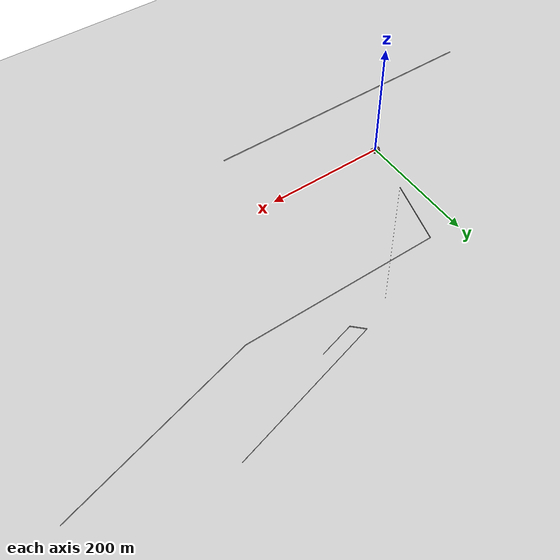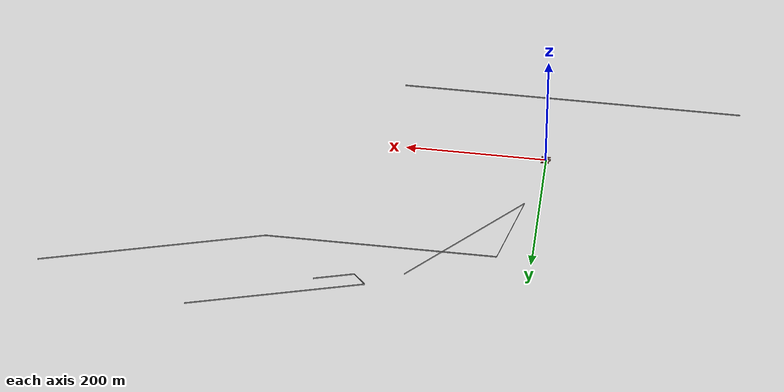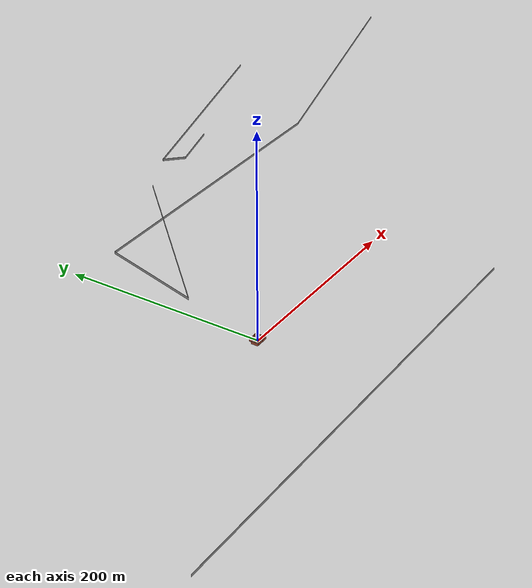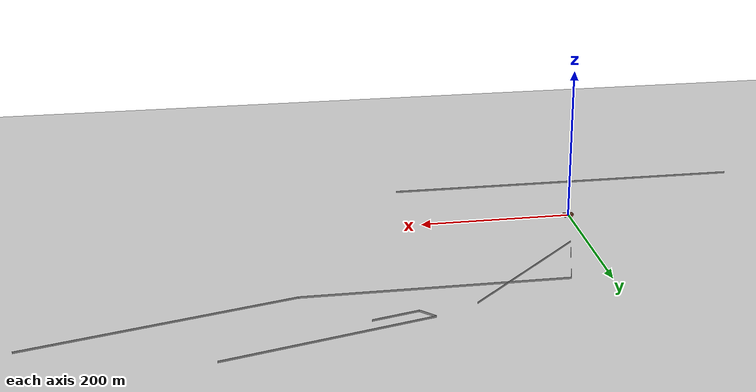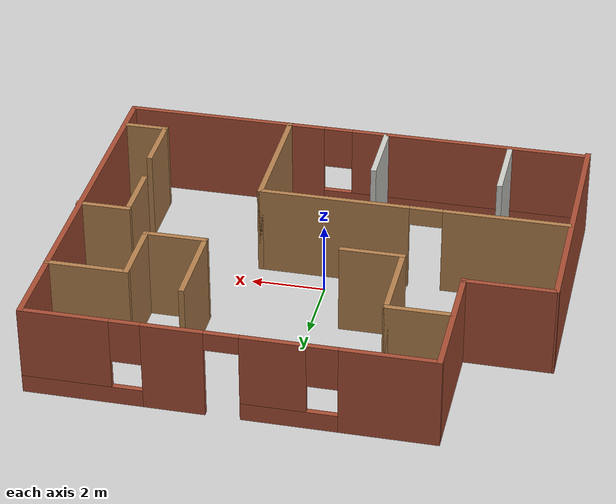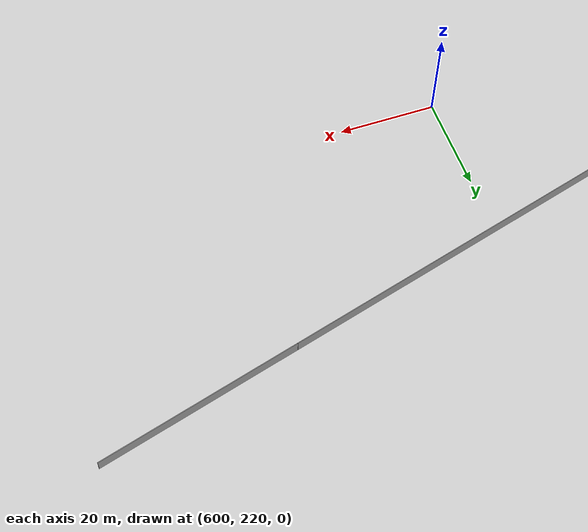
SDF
<sdf version="1.7">
 <world name="default">
  <light name="sun" type="directional">
   <pose>0 0 10 0 -0 0</pose>
   <diffuse>0.8 0.8 0.8 1</diffuse>
   <specular>0.2 0.2 0.2 1</specular>
   <attenuation>
    <range>1000</range>
    <constant>0.9</constant>
    <linear>0.01</linear>
    <quadratic>0.001</quadratic>
   </attenuation>
   <direction>-0.5 0.1 -0.9</direction>
   <spot><inner_angle>0</inner_angle><outer_angle>0</outer_angle><falloff>0</falloff></spot>
  </light>
  <model name="ground_plane">
   <static>1</static>
   <link name="link">
    <collision name="collision">
     <geometry><plane><normal>0 0 1</normal><size>100 100</size></plane></geometry>
     <surface>
      <contact><collide_bitmask>65535</collide_bitmask></contact>
      <friction><ode><mu>100</mu><mu2>50</mu2></ode></friction>
     </surface>
    </collision>
    <visual name="visual">
     <cast_shadows>0</cast_shadows>
     <geometry><plane><normal>0 0 1</normal><size>100 100</size></plane></geometry>
     <material>
      <script><uri>file://media/materials/scripts/gazebo.material</uri><name>Gazebo/Grey</name></script>
     </material>
    </visual>
   </link>
  </model>
  <gravity>0 0 -9.8</gravity>
  <magnetic_field>6e-06 2.3e-05 -4.2e-05</magnetic_field>
  <atmosphere type="adiabatic"/>
  <physics type="ode">
   <max_step_size>0.001</max_step_size>
   <real_time_factor>1</real_time_factor>
   <real_time_update_rate>1000</real_time_update_rate>
  </physics>
  <scene><ambient>0.4 0.4 0.4 1</ambient><background>0.7 0.7 0.7 1</background><shadows>1</shadows></scene>
  <spherical_coordinates>
   <surface_model>EARTH_WGS84</surface_model>
   <latitude_deg>0</latitude_deg>
   <longitude_deg>0</longitude_deg>
   <elevation>0</elevation>
   <heading_deg>0</heading_deg>
  </spherical_coordinates>
  <model name="diplom_world">
   <pose>208.767 105.628 0 0 -0 0</pose>
   <link name="Wall_10">
    <collision name="Wall_10_Collision">
     <geometry><box><size>0.16 0.15 2.5</size></box></geometry>
     <pose>0 0 1.25 0 -0 0</pose>
    </collision>
    <visual name="Wall_10_Visual">
     <pose>0 0 1.25 0 -0 0</pose>
     <geometry><box><size>0.16 0.15 2.5</size></box></geometry>
     <material>
      <script><uri>file://media/materials/scripts/gazebo.material</uri><name>Gazebo/Grey</name></script>
      <ambient>1 1 1 1</ambient>
     </material>
     <meta><layer>0</layer></meta>
    </visual>
    <pose>436.31 158.798 0 0 -0 0</pose>
   </link>
   <link name="Wall_11">
    <collision name="Wall_11_Collision">
     <geometry><box><size>279.25 0.15 2.5</size></box></geometry>
     <pose>0 0 1.25 0 -0 0</pose>
    </collision>
    <visual name="Wall_11_Visual">
     <pose>0 0 1.25 0 -0 0</pose>
     <geometry><box><size>279.25 0.15 2.5</size></box></geometry>
     <material>
      <script><uri>file://media/materials/scripts/gazebo.material</uri><name>Gazebo/Grey</name></script>
      <ambient>1 1 1 1</ambient>
     </material>
     <meta><layer>0</layer></meta>
    </visual>
    <pose>301.52 122.679 0 0 -0 -2.87979</pose>
   </link>
   <link name="Wall_12">
    <collision name="Wall_12_Collision">
     <geometry><box><size>326.5 0.15 2.5</size></box></geometry>
     <pose>0 0 1.25 0 -0 0</pose>
    </collision>
    <visual name="Wall_12_Visual">
     <pose>0 0 1.25 0 -0 0</pose>
     <geometry><box><size>326.5 0.15 2.5</size></box></geometry>
     <material>
      <script><uri>file://media/materials/scripts/gazebo.material</uri><name>Gazebo/Grey</name></script>
      <ambient>1 1 1 1</ambient>
     </material>
     <meta><layer>0</layer></meta>
    </visual>
    <pose>3.55029 86.5612 0 0 -0 3.14159</pose>
   </link>
   <link name="Wall_13">
    <collision name="Wall_13_Collision">
     <geometry><box><size>108.75 0.15 2.5</size></box></geometry>
     <pose>0 0 1.25 0 -0 0</pose>
    </collision>
    <visual name="Wall_13_Visual">
     <pose>0 0 1.25 0 -0 0</pose>
     <geometry><box><size>108.75 0.15 2.5</size></box></geometry>
     <material>
      <script><uri>file://media/materials/scripts/gazebo.material</uri><name>Gazebo/Grey</name></script>
      <ambient>1 1 1 1</ambient>
     </material>
     <meta><layer>0</layer></meta>
    </visual>
    <pose>-173.679 34.1115 0 0 -0 -1.8326</pose>
   </link>
   <link name="Wall_14">
    <collision name="Wall_14_Collision">
     <geometry><box><size>216.25 0.15 2.5</size></box></geometry>
     <pose>0 0 1.25 0 -0 0</pose>
    </collision>
    <visual name="Wall_14_Visual">
     <pose>0 0 1.25 0 -0 0</pose>
     <geometry><box><size>216.25 0.15 2.5</size></box></geometry>
     <material>
      <script><uri>file://media/materials/scripts/gazebo.material</uri><name>Gazebo/Grey</name></script>
      <ambient>1 1 1 1</ambient>
     </material>
     <meta><layer>0</layer></meta>
    </visual>
    <pose>-111.33 58.0646 0 0 -0 0.785398</pose>
   </link>
   <link name="Wall_16">
    <collision name="Wall_16_Collision">
     <geometry><box><size>483.75 0.15 2.5</size></box></geometry>
     <pose>0 0 1.25 0 -0 0</pose>
    </collision>
    <visual name="Wall_16_Visual">
     <pose>0 0 1.25 0 -0 0</pose>
     <geometry><box><size>483.75 0.15 2.5</size></box></geometry>
     <material>
      <script><uri>file://media/materials/scripts/gazebo.material</uri><name>Gazebo/Grey</name></script>
      <ambient>1 1 1 1</ambient>
     </material>
     <meta><layer>0</layer></meta>
    </visual>
    <pose>-234.705 -225.196 0 0 -0 3.14159</pose>
   </link>
   <link name="Wall_34">
    <pose>-207.597 -99.6107 0 0 -0 0</pose>
    <visual name="Wall_34_Visual_0">
     <pose>-4.08972 0 1.25 0 -0 0</pose>
     <geometry><box><size>2.57056 0.15 2.5</size></box></geometry>
     <material>
      <script><uri>file://media/materials/scripts/gazebo.material</uri><name>Gazebo/Bricks</name></script>
      <ambient>1 1 1 1</ambient>
     </material>
     <meta><layer>0</layer></meta>
    </visual>
    <collision name="Wall_34_Collision_0">
     <geometry><box><size>2.57056 0.15 2.5</size></box></geometry>
     <pose>-4.08972 0 1.25 0 -0 0</pose>
    </collision>
    <visual name="Wall_34_Visual_1">
     <pose>1.39519 0 1.25 0 -0 0</pose>
     <geometry><box><size>1.6085 0.15 2.5</size></box></geometry>
     <material>
      <script><uri>file://media/materials/scripts/gazebo.material</uri><name>Gazebo/Bricks</name></script>
      <ambient>1 1 1 1</ambient>
     </material>
     <meta><layer>0</layer></meta>
    </visual>
    <collision name="Wall_34_Collision_1">
     <geometry><box><size>1.6085 0.15 2.5</size></box></geometry>
     <pose>1.39519 0 1.25 0 -0 0</pose>
    </collision>
    <visual name="Wall_34_Visual_2">
     <pose>-1.55675 0 0.25 0 -0 0</pose>
     <geometry><box><size>2.49538 0.15 0.5</size></box></geometry>
     <material>
      <script><uri>file://media/materials/scripts/gazebo.material</uri><name>Gazebo/Bricks</name></script>
      <ambient>1 1 1 1</ambient>
     </material>
     <meta><layer>0</layer></meta>
    </visual>
    <collision name="Wall_34_Collision_2">
     <geometry><box><size>2.49538 0.15 0.5</size></box></geometry>
     <pose>-1.55675 0 0.25 0 -0 0</pose>
    </collision>
    <visual name="Wall_34_Visual_3">
     <pose>3.78722 0 0.25 0 -0 0</pose>
     <geometry><box><size>3.17556 0.15 0.5</size></box></geometry>
     <material>
      <script><uri>file://media/materials/scripts/gazebo.material</uri><name>Gazebo/Bricks</name></script>
      <ambient>1 1 1 1</ambient>
     </material>
     <meta><layer>0</layer></meta>
    </visual>
    <collision name="Wall_34_Collision_3">
     <geometry><box><size>3.17556 0.15 0.5</size></box></geometry>
     <pose>3.78722 0 0.25 0 -0 0</pose>
    </collision>
    <visual name="Wall_34_Visual_4">
     <pose>-1.15675 0 1.5 0 -0 0</pose>
     <geometry><box><size>1.69538 0.15 2</size></box></geometry>
     <material>
      <script><uri>file://media/materials/scripts/gazebo.material</uri><name>Gazebo/Bricks</name></script>
      <ambient>1 1 1 1</ambient>
     </material>
     <meta><layer>0</layer></meta>
    </visual>
    <collision name="Wall_34_Collision_4">
     <geometry><box><size>1.69538 0.15 2</size></box></geometry>
     <pose>-1.15675 0 1.5 0 -0 0</pose>
    </collision>
    <visual name="Wall_34_Visual_5">
     <pose>-1.15675 0 1.5 0 -0 0</pose>
     <geometry><box><size>1.69538 0.15 2</size></box></geometry>
     <material>
      <script><uri>file://media/materials/scripts/gazebo.material</uri><name>Gazebo/Bricks</name></script>
      <ambient>1 1 1 1</ambient>
     </material>
     <meta><layer>0</layer></meta>
    </visual>
    <collision name="Wall_34_Collision_5">
     <geometry><box><size>1.69538 0.15 2</size></box></geometry>
     <pose>-1.15675 0 1.5 0 -0 0</pose>
    </collision>
    <visual name="Wall_34_Visual_6">
     <pose>4.18722 0 1.5 0 -0 0</pose>
     <geometry><box><size>2.37556 0.15 2</size></box></geometry>
     <material>
      <script><uri>file://media/materials/scripts/gazebo.material</uri><name>Gazebo/Bricks</name></script>
      <ambient>1 1 1 1</ambient>
     </material>
     <meta><layer>0</layer></meta>
    </visual>
    <collision name="Wall_34_Collision_6">
     <geometry><box><size>2.37556 0.15 2</size></box></geometry>
     <pose>4.18722 0 1.5 0 -0 0</pose>
    </collision>
    <visual name="Wall_34_Visual_7">
     <pose>-2.40444 0 1.9 0 -0 0</pose>
     <geometry><box><size>0.8 0.15 1.2</size></box></geometry>
     <material>
      <script><uri>file://media/materials/scripts/gazebo.material</uri><name>Gazebo/Bricks</name></script>
      <ambient>1 1 1 1</ambient>
     </material>
     <meta><layer>0</layer></meta>
    </visual>
    <collision name="Wall_34_Collision_7">
     <geometry><box><size>0.8 0.15 1.2</size></box></geometry>
     <pose>-2.40444 0 1.9 0 -0 0</pose>
    </collision>
    <visual name="Wall_34_Visual_8">
     <pose>2.59944 0 1.9 0 -0 0</pose>
     <geometry><box><size>0.8 0.15 1.2</size></box></geometry>
     <material>
      <script><uri>file://media/materials/scripts/gazebo.material</uri><name>Gazebo/Bricks</name></script>
      <ambient>1 1 1 1</ambient>
     </material>
     <meta><layer>0</layer></meta>
    </visual>
    <collision name="Wall_34_Collision_8">
     <geometry><box><size>0.8 0.15 1.2</size></box></geometry>
     <pose>2.59944 0 1.9 0 -0 0</pose>
    </collision>
    <visual name="Wall_34_Visual_9">
     <pose>0.140937 0 2.25 0 -0 0</pose>
     <geometry><box><size>0.9 0.15 0.5</size></box></geometry>
     <material>
      <script><uri>file://media/materials/scripts/gazebo.material</uri><name>Gazebo/Bricks</name></script>
      <ambient>1 1 1 1</ambient>
     </material>
     <meta><layer>0</layer></meta>
    </visual>
    <collision name="Wall_34_Collision_9">
     <geometry><box><size>0.9 0.15 0.5</size></box></geometry>
     <pose>0.140937 0 2.25 0 -0 0</pose>
    </collision>
    <visual name="Wall_34_Visual_10">
     <pose>0.140937 0 2.25 0 -0 0</pose>
     <geometry><box><size>0.9 0.15 0.5</size></box></geometry>
     <material>
      <script><uri>file://media/materials/scripts/gazebo.material</uri><name>Gazebo/Bricks</name></script>
      <ambient>1 1 1 1</ambient>
     </material>
     <meta><layer>0</layer></meta>
    </visual>
    <collision name="Wall_34_Collision_10">
     <geometry><box><size>0.9 0.15 0.5</size></box></geometry>
     <pose>0.140937 0 2.25 0 -0 0</pose>
    </collision>
   </link>
   <link name="Wall_35">
    <collision name="Wall_35_Collision">
     <geometry><box><size>10.5 0.15 2.5</size></box></geometry>
     <pose>0 0 1.25 0 -0 0</pose>
    </collision>
    <visual name="Wall_35_Visual">
     <pose>0 0 1.25 0 -0 0</pose>
     <geometry><box><size>10.5 0.15 2.5</size></box></geometry>
     <material>
      <script><uri>file://media/materials/scripts/gazebo.material</uri><name>Gazebo/Bricks</name></script>
      <ambient>1 1 1 1</ambient>
     </material>
     <meta><layer>0</layer></meta>
    </visual>
    <pose>-202.297 -104.786 0 0 -0 -1.5708</pose>
   </link>
   <link name="Wall_38">
    <pose>-208.722 -109.961 0 0 -0 3.14159</pose>
    <visual name="Wall_38_Visual_0">
     <pose>-3.68025 0 1.25 0 -0 0</pose>
     <geometry><box><size>5.63949 0.15 2.5</size></box></geometry>
     <material>
      <script><uri>file://media/materials/scripts/gazebo.material</uri><name>Gazebo/Bricks</name></script>
      <ambient>1 1 1 1</ambient>
     </material>
     <meta><layer>0</layer></meta>
    </visual>
    <collision name="Wall_38_Collision_0">
     <geometry><box><size>5.63949 0.15 2.5</size></box></geometry>
     <pose>-3.68025 0 1.25 0 -0 0</pose>
    </collision>
    <visual name="Wall_38_Visual_1">
     <pose>2.81975 0 0.25 0 -0 0</pose>
     <geometry><box><size>7.36051 0.15 0.5</size></box></geometry>
     <material>
      <script><uri>file://media/materials/scripts/gazebo.material</uri><name>Gazebo/Bricks</name></script>
      <ambient>1 1 1 1</ambient>
     </material>
     <meta><layer>0</layer></meta>
    </visual>
    <collision name="Wall_38_Collision_1">
     <geometry><box><size>7.36051 0.15 0.5</size></box></geometry>
     <pose>2.81975 0 0.25 0 -0 0</pose>
    </collision>
    <visual name="Wall_38_Visual_2">
     <pose>3.21975 0 1.5 0 -0 0</pose>
     <geometry><box><size>6.56051 0.15 2</size></box></geometry>
     <material>
      <script><uri>file://media/materials/scripts/gazebo.material</uri><name>Gazebo/Bricks</name></script>
      <ambient>1 1 1 1</ambient>
     </material>
     <meta><layer>0</layer></meta>
    </visual>
    <collision name="Wall_38_Collision_2">
     <geometry><box><size>6.56051 0.15 2</size></box></geometry>
     <pose>3.21975 0 1.5 0 -0 0</pose>
    </collision>
    <visual name="Wall_38_Visual_3">
     <pose>-0.460511 0 1.9 0 -0 0</pose>
     <geometry><box><size>0.8 0.15 1.2</size></box></geometry>
     <material>
      <script><uri>file://media/materials/scripts/gazebo.material</uri><name>Gazebo/Bricks</name></script>
      <ambient>1 1 1 1</ambient>
     </material>
     <meta><layer>0</layer></meta>
    </visual>
    <collision name="Wall_38_Collision_3">
     <geometry><box><size>0.8 0.15 1.2</size></box></geometry>
     <pose>-0.460511 0 1.9 0 -0 0</pose>
    </collision>
   </link>
   <link name="Wall_40">
    <collision name="Wall_40_Collision">
     <geometry><box><size>2.5 0.15 2.5</size></box></geometry>
     <pose>0 0 1.25 0 -0 0</pose>
    </collision>
    <visual name="Wall_40_Visual">
     <pose>0 0 1.25 0 -0 0</pose>
     <geometry><box><size>2.5 0.15 2.5</size></box></geometry>
     <material>
      <script><uri>file://media/materials/scripts/gazebo.material</uri><name>Gazebo/Bricks</name></script>
      <ambient>1 1 1 1</ambient>
     </material>
     <meta><layer>0</layer></meta>
    </visual>
    <pose>-214.095 -103.196 0 0 -0 0</pose>
   </link>
   <link name="Wall_42">
    <collision name="Wall_42_Collision">
     <geometry><box><size>3.75 0.15 2.5</size></box></geometry>
     <pose>0 0 1.25 0 -0 0</pose>
    </collision>
    <visual name="Wall_42_Visual">
     <pose>0 0 1.25 0 -0 0</pose>
     <geometry><box><size>3.75 0.15 2.5</size></box></geometry>
     <material>
      <script><uri>file://media/materials/scripts/gazebo.material</uri><name>Gazebo/Bricks</name></script>
      <ambient>1 1 1 1</ambient>
     </material>
     <meta><layer>0</layer></meta>
    </visual>
    <pose>-212.897 -101.411 0 0 -0 -1.5708</pose>
   </link>
   <link name="Wall_44">
    <collision name="Wall_44_Collision">
     <geometry><box><size>7 0.15 2.5</size></box></geometry>
     <pose>0 0 1.25 0 -0 0</pose>
    </collision>
    <visual name="Wall_44_Visual">
     <pose>0 0 1.25 0 -0 0</pose>
     <geometry><box><size>7 0.15 2.5</size></box></geometry>
     <material>
      <script><uri>file://media/materials/scripts/gazebo.material</uri><name>Gazebo/Bricks</name></script>
      <ambient>1 1 1 1</ambient>
     </material>
     <meta><layer>0</layer></meta>
    </visual>
    <pose>-215.27 -106.621 0 0 -0 -1.5708</pose>
   </link>
   <link name="Wall_47">
    <collision name="Wall_47_Collision">
     <geometry><box><size>2.25 0.15 2.5</size></box></geometry>
     <pose>0 0 1.25 0 -0 0</pose>
    </collision>
    <visual name="Wall_47_Visual">
     <pose>0 0 1.25 0 -0 0</pose>
     <geometry><box><size>2.25 0.15 2.5</size></box></geometry>
     <material>
      <script><uri>file://media/materials/scripts/gazebo.material</uri><name>Gazebo/Wood</name></script>
      <ambient>1 1 1 1</ambient>
     </material>
     <meta><layer>0</layer></meta>
    </visual>
    <pose>-203.358 -101.808 0 0 -0 3.14159</pose>
   </link>
   <link name="Wall_48">
    <collision name="Wall_48_Collision">
     <geometry><box><size>2 0.15 2.5</size></box></geometry>
     <pose>0 0 1.25 0 -0 0</pose>
    </collision>
    <visual name="Wall_48_Visual">
     <pose>0 0 1.25 0 -0 0</pose>
     <geometry><box><size>2 0.15 2.5</size></box></geometry>
     <material>
      <script><uri>file://media/materials/scripts/gazebo.material</uri><name>Gazebo/Wood</name></script>
      <ambient>1 1 1 1</ambient>
     </material>
     <meta><layer>0</layer></meta>
    </visual>
    <pose>-204.408 -102.733 0 0 -0 -1.5708</pose>
   </link>
   <link name="Wall_49">
    <collision name="Wall_49_Collision">
     <geometry><box><size>1.75 0.15 2.5</size></box></geometry>
     <pose>0 0 1.25 0 -0 0</pose>
    </collision>
    <visual name="Wall_49_Visual">
     <pose>0 0 1.25 0 -0 0</pose>
     <geometry><box><size>1.75 0.15 2.5</size></box></geometry>
     <material>
      <script><uri>file://media/materials/scripts/gazebo.material</uri><name>Gazebo/Wood</name></script>
      <ambient>1 1 1 1</ambient>
     </material>
     <meta><layer>0</layer></meta>
    </visual>
    <pose>-205.208 -103.658 0 0 -0 3.14159</pose>
   </link>
   <link name="Wall_5">
    <collision name="Wall_5_Collision">
     <geometry><box><size>57.75 0.15 2.5</size></box></geometry>
     <pose>0 0 1.25 0 -0 0</pose>
    </collision>
    <visual name="Wall_5_Visual">
     <pose>0 0 1.25 0 -0 0</pose>
     <geometry><box><size>57.75 0.15 2.5</size></box></geometry>
     <material>
      <script><uri>file://media/materials/scripts/gazebo.material</uri><name>Gazebo/Grey</name></script>
      <ambient>1 1 1 1</ambient>
     </material>
     <meta><layer>0</layer></meta>
    </visual>
    <pose>61.7641 150.327 0 0 -0 -2.87979</pose>
   </link>
   <link name="Wall_50">
    <collision name="Wall_50_Collision">
     <geometry><box><size>2.5 0.15 2.5</size></box></geometry>
     <pose>0 0 1.25 0 -0 0</pose>
    </collision>
    <visual name="Wall_50_Visual">
     <pose>0 0 1.25 0 -0 0</pose>
     <geometry><box><size>2.5 0.15 2.5</size></box></geometry>
     <material>
      <script><uri>file://media/materials/scripts/gazebo.material</uri><name>Gazebo/Wood</name></script>
      <ambient>1 1 1 1</ambient>
     </material>
     <meta><layer>0</layer></meta>
    </visual>
    <pose>-206.008 -102.483 0 0 -0 1.5708</pose>
   </link>
   <link name="Wall_52">
    <collision name="Wall_52_Collision">
     <geometry><box><size>1.5 0.15 2.5</size></box></geometry>
     <pose>0 0 1.25 0 -0 0</pose>
    </collision>
    <visual name="Wall_52_Visual">
     <pose>0 0 1.25 0 -0 0</pose>
     <geometry><box><size>1.5 0.15 2.5</size></box></geometry>
     <material>
      <script><uri>file://media/materials/scripts/gazebo.material</uri><name>Gazebo/Wood</name></script>
      <ambient>1 1 1 1</ambient>
     </material>
     <meta><layer>0</layer></meta>
    </visual>
    <pose>-202.938 -104.718 0 0 -0 3.14159</pose>
   </link>
   <link name="Wall_53">
    <collision name="Wall_53_Collision">
     <geometry><box><size>1.75 0.15 2.5</size></box></geometry>
     <pose>0 0 1.25 0 -0 0</pose>
    </collision>
    <visual name="Wall_53_Visual">
     <pose>0 0 1.25 0 -0 0</pose>
     <geometry><box><size>1.75 0.15 2.5</size></box></geometry>
     <material>
      <script><uri>file://media/materials/scripts/gazebo.material</uri><name>Gazebo/Wood</name></script>
      <ambient>1 1 1 1</ambient>
     </material>
     <meta><layer>0</layer></meta>
    </visual>
    <pose>-203.613 -105.518 0 0 -0 -1.5708</pose>
   </link>
   <link name="Wall_59">
    <collision name="Wall_59_Collision">
     <geometry><box><size>1.25 0.15 2.5</size></box></geometry>
     <pose>0 0 1.25 0 -0 0</pose>
    </collision>
    <visual name="Wall_59_Visual">
     <pose>0 0 1.25 0 -0 0</pose>
     <geometry><box><size>1.25 0.15 2.5</size></box></geometry>
     <material>
      <script><uri>file://media/materials/scripts/gazebo.material</uri><name>Gazebo/Wood</name></script>
      <ambient>1 1 1 1</ambient>
     </material>
     <meta><layer>0</layer></meta>
    </visual>
    <pose>-202.926 -109.003 0 0 -0 3.14159</pose>
   </link>
   <link name="Wall_6">
    <collision name="Wall_6_Collision">
     <geometry><box><size>24 0.15 2.5</size></box></geometry>
     <pose>0 0 1.25 0 -0 0</pose>
    </collision>
    <visual name="Wall_6_Visual">
     <pose>0 0 1.25 0 -0 0</pose>
     <geometry><box><size>24 0.15 2.5</size></box></geometry>
     <material>
      <script><uri>file://media/materials/scripts/gazebo.material</uri><name>Gazebo/Grey</name></script>
      <ambient>1 1 1 1</ambient>
     </material>
     <meta><layer>0</layer></meta>
    </visual>
    <pose>25.5132 151.305 0 0 -0 2.35619</pose>
   </link>
   <link name="Wall_60">
    <collision name="Wall_60_Collision">
     <geometry><box><size>1.75 0.15 2.5</size></box></geometry>
     <pose>0 0 1.25 0 -0 0</pose>
    </collision>
    <visual name="Wall_60_Visual">
     <pose>0 0 1.25 0 -0 0</pose>
     <geometry><box><size>1.75 0.15 2.5</size></box></geometry>
     <material>
      <script><uri>file://media/materials/scripts/gazebo.material</uri><name>Gazebo/Wood</name></script>
      <ambient>1 1 1 1</ambient>
     </material>
     <meta><layer>0</layer></meta>
    </visual>
    <pose>-203.476 -108.203 0 0 -0 1.5708</pose>
   </link>
   <link name="Wall_65">
    <pose>-211.035 -106.342 0 0 -0 0</pose>
    <visual name="Wall_65_Visual_0">
     <pose>-2.52594 0 1.25 0 -0 0</pose>
     <geometry><box><size>3.44811 0.15 2.5</size></box></geometry>
     <material>
      <script><uri>file://media/materials/scripts/gazebo.material</uri><name>Gazebo/Wood</name></script>
      <ambient>1 1 1 1</ambient>
     </material>
     <meta><layer>0</layer></meta>
    </visual>
    <collision name="Wall_65_Collision_0">
     <geometry><box><size>3.44811 0.15 2.5</size></box></geometry>
     <pose>-2.52594 0 1.25 0 -0 0</pose>
    </collision>
    <visual name="Wall_65_Visual_1">
     <pose>2.17406 0 1.25 0 -0 0</pose>
     <geometry><box><size>4.15189 0.15 2.5</size></box></geometry>
     <material>
      <script><uri>file://media/materials/scripts/gazebo.material</uri><name>Gazebo/Wood</name></script>
      <ambient>1 1 1 1</ambient>
     </material>
     <meta><layer>0</layer></meta>
    </visual>
    <collision name="Wall_65_Collision_1">
     <geometry><box><size>4.15189 0.15 2.5</size></box></geometry>
     <pose>2.17406 0 1.25 0 -0 0</pose>
    </collision>
    <visual name="Wall_65_Visual_2">
     <pose>-0.351889 0 2.25 0 -0 0</pose>
     <geometry><box><size>0.9 0.15 0.5</size></box></geometry>
     <material>
      <script><uri>file://media/materials/scripts/gazebo.material</uri><name>Gazebo/Wood</name></script>
      <ambient>1 1 1 1</ambient>
     </material>
     <meta><layer>0</layer></meta>
    </visual>
    <collision name="Wall_65_Collision_2">
     <geometry><box><size>0.9 0.15 0.5</size></box></geometry>
     <pose>-0.351889 0 2.25 0 -0 0</pose>
    </collision>
   </link>
   <link name="Wall_68">
    <collision name="Wall_68_Collision">
     <geometry><box><size>3.75 0.15 2.5</size></box></geometry>
     <pose>0 0 1.25 0 -0 0</pose>
    </collision>
    <visual name="Wall_68_Visual">
     <pose>0 0 1.25 0 -0 0</pose>
     <geometry><box><size>3.75 0.15 2.5</size></box></geometry>
     <material>
      <script><uri>file://media/materials/scripts/gazebo.material</uri><name>Gazebo/Wood</name></script>
      <ambient>1 1 1 1</ambient>
     </material>
     <meta><layer>0</layer></meta>
    </visual>
    <pose>-206.86 -108.142 0 0 -0 -1.5708</pose>
   </link>
   <link name="Wall_7">
    <collision name="Wall_7_Collision">
     <geometry><box><size>253 0.15 2.5</size></box></geometry>
     <pose>0 0 1.25 0 -0 0</pose>
    </collision>
    <visual name="Wall_7_Visual">
     <pose>0 0 1.25 0 -0 0</pose>
     <geometry><box><size>253 0.15 2.5</size></box></geometry>
     <material>
      <script><uri>file://media/materials/scripts/gazebo.material</uri><name>Gazebo/Grey</name></script>
      <ambient>1 1 1 1</ambient>
     </material>
     <meta><layer>0</layer></meta>
    </visual>
    <pose>139.198 192.458 0 0 -0 0.261799</pose>
   </link>
   <link name="Wall_71">
    <collision name="Wall_71_Collision">
     <geometry><box><size>2 0.15 2.5</size></box></geometry>
     <pose>0 0 1.25 0 -0 0</pose>
    </collision>
    <visual name="Wall_71_Visual">
     <pose>0 0 1.25 0 -0 0</pose>
     <geometry><box><size>2 0.15 2.5</size></box></geometry>
     <material>
      <script><uri>file://media/materials/scripts/gazebo.material</uri><name>Gazebo/CeilingTiled</name></script>
      <ambient>1 1 1 1</ambient>
     </material>
     <meta><layer>0</layer></meta>
    </visual>
    <pose>-213.122 -108.897 0 0 -0 1.5708</pose>
   </link>
   <link name="Wall_73">
    <collision name="Wall_73_Collision">
     <geometry><box><size>2 0.15 2.5</size></box></geometry>
     <pose>0 0 1.25 0 -0 0</pose>
    </collision>
    <visual name="Wall_73_Visual">
     <pose>0 0 1.25 0 -0 0</pose>
     <geometry><box><size>2 0.15 2.5</size></box></geometry>
     <material>
      <script><uri>file://media/materials/scripts/gazebo.material</uri><name>Gazebo/CeilingTiled</name></script>
      <ambient>1 1 1 1</ambient>
     </material>
     <meta><layer>0</layer></meta>
    </visual>
    <pose>-209.637 -108.972 0 0 -0 1.5708</pose>
   </link>
   <link name="Wall_78">
    <collision name="Wall_78_Collision">
     <geometry><box><size>1.75 0.15 2.5</size></box></geometry>
     <pose>0 0 1.25 0 -0 0</pose>
    </collision>
    <visual name="Wall_78_Visual">
     <pose>0 0 1.25 0 -0 0</pose>
     <geometry><box><size>1.75 0.15 2.5</size></box></geometry>
     <material>
      <script><uri>file://media/materials/scripts/gazebo.material</uri><name>Gazebo/Wood</name></script>
      <ambient>1 1 1 1</ambient>
     </material>
     <meta><layer>0</layer></meta>
    </visual>
    <pose>-211.986 -101.642 0 0 -0 0</pose>
   </link>
   <link name="Wall_79">
    <collision name="Wall_79_Collision">
     <geometry><box><size>2.5 0.15 2.5</size></box></geometry>
     <pose>0 0 1.25 0 -0 0</pose>
    </collision>
    <visual name="Wall_79_Visual">
     <pose>0 0 1.25 0 -0 0</pose>
     <geometry><box><size>2.5 0.15 2.5</size></box></geometry>
     <material>
      <script><uri>file://media/materials/scripts/gazebo.material</uri><name>Gazebo/Wood</name></script>
      <ambient>1 1 1 1</ambient>
     </material>
     <meta><layer>0</layer></meta>
    </visual>
    <pose>-211.186 -102.817 0 0 -0 -1.5708</pose>
   </link>
   <link name="Wall_80">
    <collision name="Wall_80_Collision">
     <geometry><box><size>1.75 0.15 2.5</size></box></geometry>
     <pose>0 0 1.25 0 -0 0</pose>
    </collision>
    <visual name="Wall_80_Visual">
     <pose>0 0 1.25 0 -0 0</pose>
     <geometry><box><size>1.75 0.15 2.5</size></box></geometry>
     <material>
      <script><uri>file://media/materials/scripts/gazebo.material</uri><name>Gazebo/Wood</name></script>
      <ambient>1 1 1 1</ambient>
     </material>
     <meta><layer>0</layer></meta>
    </visual>
    <pose>-210.386 -103.992 0 0 -0 0</pose>
   </link>
   <link name="Wall_9">
    <collision name="Wall_9_Collision">
     <geometry><box><size>41.75 0.15 2.5</size></box></geometry>
     <pose>0 0 1.25 0 -0 0</pose>
    </collision>
    <visual name="Wall_9_Visual">
     <pose>0 0 1.25 0 -0 0</pose>
     <geometry><box><size>41.75 0.15 2.5</size></box></geometry>
     <material>
      <script><uri>file://media/materials/scripts/gazebo.material</uri><name>Gazebo/Grey</name></script>
      <ambient>1 1 1 1</ambient>
     </material>
     <meta><layer>0</layer></meta>
    </visual>
    <pose>456.396 164.181 0 0 -0 -2.87979</pose>
   </link>
   <static>1</static>
  </model>
 </world>
</sdf>
